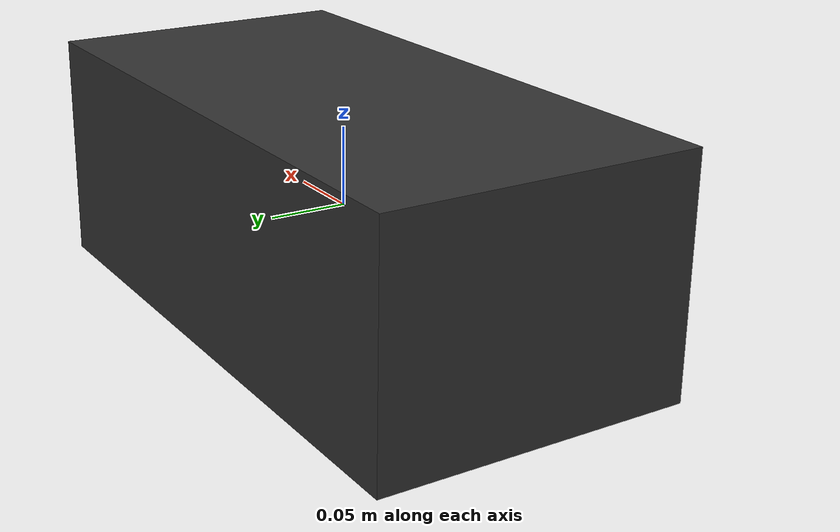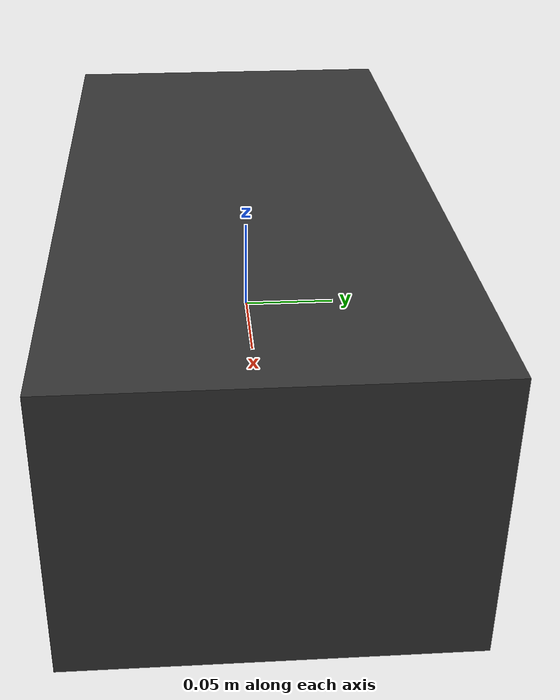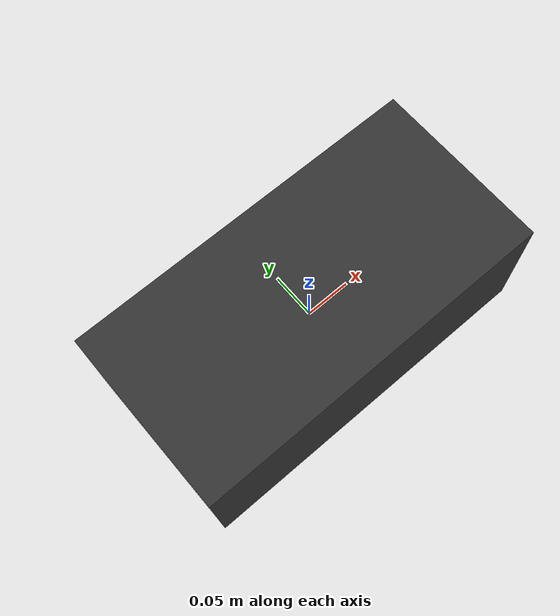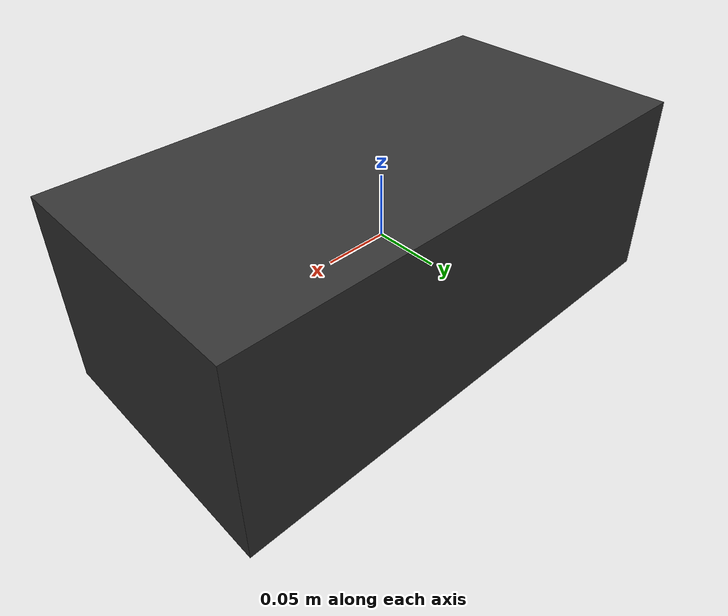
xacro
<?xml version="1.0"?>
<robot name="auv" xmlns:xacro="http://www.ros.org/wiki/xacro">

  <!-- Base link (center of buoyancy / geometric center of hull) -->
  <link name="base_link">
    <visual>
      <geometry>
        <box size="0.4 0.2 0.15"/>
      </geometry>
      <material name="dark_gray">
        <color rgba="0.2 0.2 0.2 1.0"/>
      </material>
    </visual>
    <collision>
      <geometry>
        <box size="0.4 0.2 0.15"/>
      </geometry>
    </collision>
    <inertial>
      <!-- Approximate: 3 kg, box distribution. Update with measured values. -->
      <mass value="3.0"/>
      <inertia ixx="0.02" ixy="0" ixz="0"
               iyy="0.05" iyz="0"
               izz="0.05"/>
    </inertial>
  </link>

  <!-- IMU link — position of BNO085 on Teensy 4.1 board -->
  <joint name="imu_joint" type="fixed">
    <parent link="base_link"/>
    <child link="imu_link"/>
    <!-- TODO: measure actual IMU mounting offset -->
    <origin xyz="0 0 0" rpy="0 0 0"/>
  </joint>
  <link name="imu_link"/>

  <!-- Thruster links (placeholder positions — update with actual frame geometry) -->
  <xacro:macro name="thruster_link" params="name x y z roll pitch yaw">
    <joint name="${name}_joint" type="fixed">
      <parent link="base_link"/>
      <child link="${name}_link"/>
      <origin xyz="${x} ${y} ${z}" rpy="${roll} ${pitch} ${yaw}"/>
    </joint>
    <link name="${name}_link"/>
  </xacro:macro>

  <!-- 4 horizontal thrusters at 45° (h4_v2 config placeholder) -->
  <xacro:thruster_link name="thruster_fl" x=" 0.15" y="-0.10" z="0" roll="0" pitch="0" yaw=" 0.785"/>
  <xacro:thruster_link name="thruster_fr" x=" 0.15" y=" 0.10" z="0" roll="0" pitch="0" yaw="-0.785"/>
  <xacro:thruster_link name="thruster_rl" x="-0.15" y="-0.10" z="0" roll="0" pitch="0" yaw="-0.785"/>
  <xacro:thruster_link name="thruster_rr" x="-0.15" y=" 0.10" z="0" roll="0" pitch="0" yaw=" 0.785"/>

  <!-- 2 vertical thrusters -->
  <xacro:thruster_link name="thruster_vf" x=" 0.10" y="0" z="0.05" roll="0" pitch="1.5708" yaw="0"/>
  <xacro:thruster_link name="thruster_vr" x="-0.10" y="0" z="0.05" roll="0" pitch="1.5708" yaw="0"/>

</robot>
